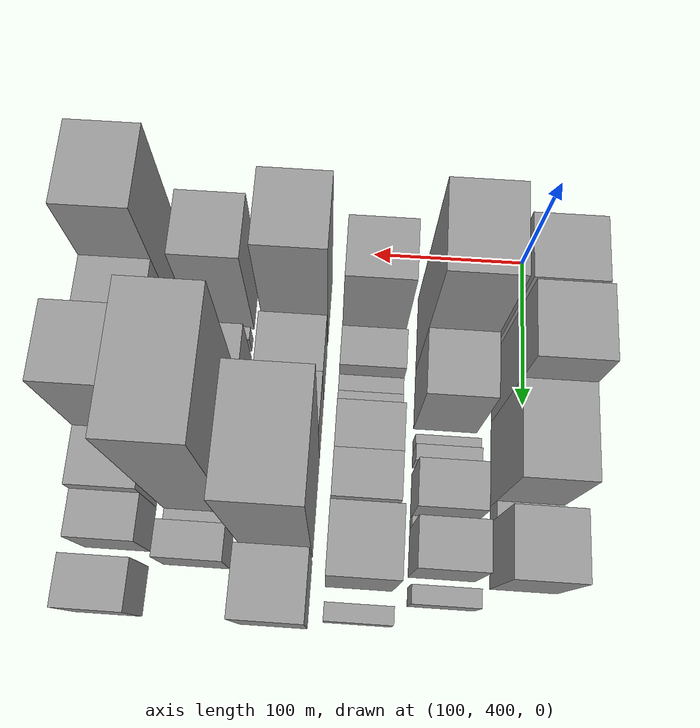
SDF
<sdf version="1.6">
 <world name="default">
  <model name="building_39">
   <static>1</static>
   <pose>100.0000 448.2193 0 0.000000 0.000000 0.000000</pose>
   <link name="link">
    <pose>0 0 58.50 0 0 0</pose>
    <collision name="collision"><geometry><box><size>40.0000 37.8522 117.0000</size></box></geometry></collision>
    <visual name="visual">
     <cast_shadows>0</cast_shadows>
     <geometry><box><size>40.0000 37.8522 117.0000</size></box></geometry>
     <material>
      <script>
       <uri>model://grey_wall/materials/scripts</uri>
       <uri>model://grey_wall/materials/textures</uri>
       <name>vrc/grey_wall</name>
      </script>
     </material>
    </visual>
   </link>
  </model>
  <model name="building_40">
   <static>1</static>
   <pose>100.0000 492.0342 0 0.000000 0.000000 0.000000</pose>
   <link name="link">
    <pose>0 0 61.50 0 0 0</pose>
    <collision name="collision"><geometry><box><size>40.0000 41.7775 123.0000</size></box></geometry></collision>
    <visual name="visual">
     <cast_shadows>0</cast_shadows>
     <geometry><box><size>40.0000 41.7775 123.0000</size></box></geometry>
     <material>
      <script>
       <uri>model://grey_wall/materials/scripts</uri>
       <uri>model://grey_wall/materials/textures</uri>
       <name>vrc/grey_wall</name>
      </script>
     </material>
    </visual>
   </link>
  </model>
  <model name="building_41">
   <static>1</static>
   <pose>100.0000 539.8576 0 0.000000 0.000000 0.000000</pose>
   <link name="link">
    <pose>0 0 45.00 0 0 0</pose>
    <collision name="collision"><geometry><box><size>40.0000 53.8695 90.0000</size></box></geometry></collision>
    <visual name="visual">
     <cast_shadows>0</cast_shadows>
     <geometry><box><size>40.0000 53.8695 90.0000</size></box></geometry>
     <material>
      <script>
       <uri>model://grey_wall/materials/scripts</uri>
       <uri>model://grey_wall/materials/textures</uri>
       <name>vrc/grey_wall</name>
      </script>
     </material>
    </visual>
   </link>
  </model>
  <model name="building_42">
   <static>1</static>
   <pose>100.0000 571.8155 0 0.000000 0.000000 0.000000</pose>
   <link name="link">
    <pose>0 0 10.50 0 0 0</pose>
    <collision name="collision"><geometry><box><size>40.0000 10.0463 21.0000</size></box></geometry></collision>
    <visual name="visual">
     <cast_shadows>0</cast_shadows>
     <geometry><box><size>40.0000 10.0463 21.0000</size></box></geometry>
     <material>
      <script>
       <uri>model://grey_wall/materials/scripts</uri>
       <uri>model://grey_wall/materials/textures</uri>
       <name>vrc/grey_wall</name>
      </script>
     </material>
    </visual>
   </link>
  </model>
  <model name="building_43">
   <static>1</static>
   <pose>100.0000 596.6419 0 0.000000 0.000000 0.000000</pose>
   <link name="link">
    <pose>0 0 34.50 0 0 0</pose>
    <collision name="collision"><geometry><box><size>40.0000 39.6066 69.0000</size></box></geometry></collision>
    <visual name="visual">
     <cast_shadows>0</cast_shadows>
     <geometry><box><size>40.0000 39.6066 69.0000</size></box></geometry>
     <material>
      <script>
       <uri>model://grey_wall/materials/scripts</uri>
       <uri>model://grey_wall/materials/textures</uri>
       <name>vrc/grey_wall</name>
      </script>
     </material>
    </visual>
   </link>
  </model>
  <model name="building_83">
   <static>1</static>
   <pose>149.0000 455.8976 0 0.000000 0.000000 0.000000</pose>
   <link name="link">
    <pose>0 0 73.50 0 0 0</pose>
    <collision name="collision"><geometry><box><size>40.0000 51.5183 147.0000</size></box></geometry></collision>
    <visual name="visual">
     <cast_shadows>0</cast_shadows>
     <geometry><box><size>40.0000 51.5183 147.0000</size></box></geometry>
     <material>
      <script>
       <uri>model://grey_wall/materials/scripts</uri>
       <uri>model://grey_wall/materials/textures</uri>
       <name>vrc/grey_wall</name>
      </script>
     </material>
    </visual>
   </link>
  </model>
  <model name="building_84">
   <static>1</static>
   <pose>149.0000 501.0467 0 0.000000 0.000000 0.000000</pose>
   <link name="link">
    <pose>0 0 37.50 0 0 0</pose>
    <collision name="collision"><geometry><box><size>40.0000 38.7800 75.0000</size></box></geometry></collision>
    <visual name="visual">
     <cast_shadows>0</cast_shadows>
     <geometry><box><size>40.0000 38.7800 75.0000</size></box></geometry>
     <material>
      <script>
       <uri>model://grey_wall/materials/scripts</uri>
       <uri>model://grey_wall/materials/textures</uri>
       <name>vrc/grey_wall</name>
      </script>
     </material>
    </visual>
   </link>
  </model>
  <model name="building_85">
   <static>1</static>
   <pose>149.0000 532.1612 0 0.000000 0.000000 0.000000</pose>
   <link name="link">
    <pose>0 0 9.00 0 0 0</pose>
    <collision name="collision"><geometry><box><size>40.0000 7.4489 18.0000</size></box></geometry></collision>
    <visual name="visual">
     <cast_shadows>0</cast_shadows>
     <geometry><box><size>40.0000 7.4489 18.0000</size></box></geometry>
     <material>
      <script>
       <uri>model://grey_wall/materials/scripts</uri>
       <uri>model://grey_wall/materials/textures</uri>
       <name>vrc/grey_wall</name>
      </script>
     </material>
    </visual>
   </link>
  </model>
  <model name="building_86">
   <static>1</static>
   <pose>149.0000 540.8552 0 0.000000 0.000000 0.000000</pose>
   <link name="link">
    <pose>0 0 12.00 0 0 0</pose>
    <collision name="collision"><geometry><box><size>40.0000 9.9391 24.0000</size></box></geometry></collision>
    <visual name="visual">
     <cast_shadows>0</cast_shadows>
     <geometry><box><size>40.0000 9.9391 24.0000</size></box></geometry>
     <material>
      <script>
       <uri>model://grey_wall/materials/scripts</uri>
       <uri>model://grey_wall/materials/textures</uri>
       <name>vrc/grey_wall</name>
      </script>
     </material>
    </visual>
   </link>
  </model>
  <model name="building_87">
   <static>1</static>
   <pose>149.0000 563.7792 0 0.000000 0.000000 0.000000</pose>
   <link name="link">
    <pose>0 0 24.00 0 0 0</pose>
    <collision name="collision"><geometry><box><size>40.0000 27.9090 48.0000</size></box></geometry></collision>
    <visual name="visual">
     <cast_shadows>0</cast_shadows>
     <geometry><box><size>40.0000 27.9090 48.0000</size></box></geometry>
     <material>
      <script>
       <uri>model://grey_wall/materials/scripts</uri>
       <uri>model://grey_wall/materials/textures</uri>
       <name>vrc/grey_wall</name>
      </script>
     </material>
    </visual>
   </link>
  </model>
  <model name="building_88">
   <static>1</static>
   <pose>149.0000 580.9010 0 0.000000 0.000000 0.000000</pose>
   <link name="link">
    <pose>0 0 7.50 0 0 0</pose>
    <collision name="collision"><geometry><box><size>40.0000 6.3346 15.0000</size></box></geometry></collision>
    <visual name="visual">
     <cast_shadows>0</cast_shadows>
     <geometry><box><size>40.0000 6.3346 15.0000</size></box></geometry>
     <material>
      <script>
       <uri>model://grey_wall/materials/scripts</uri>
       <uri>model://grey_wall/materials/textures</uri>
       <name>vrc/grey_wall</name>
      </script>
     </material>
    </visual>
   </link>
  </model>
  <model name="building_89">
   <static>1</static>
   <pose>149.0000 598.3968 0 0.000000 0.000000 0.000000</pose>
   <link name="link">
    <pose>0 0 28.50 0 0 0</pose>
    <collision name="collision"><geometry><box><size>40.0000 28.6569 57.0000</size></box></geometry></collision>
    <visual name="visual">
     <cast_shadows>0</cast_shadows>
     <geometry><box><size>40.0000 28.6569 57.0000</size></box></geometry>
     <material>
      <script>
       <uri>model://grey_wall/materials/scripts</uri>
       <uri>model://grey_wall/materials/textures</uri>
       <name>vrc/grey_wall</name>
      </script>
     </material>
    </visual>
   </link>
  </model>
  <model name="building_90">
   <static>1</static>
   <pose>149.0000 624.2394 0 0.000000 0.000000 0.000000</pose>
   <link name="link">
    <pose>0 0 13.50 0 0 0</pose>
    <collision name="collision"><geometry><box><size>40.0000 11.0282 27.0000</size></box></geometry></collision>
    <visual name="visual">
     <cast_shadows>0</cast_shadows>
     <geometry><box><size>40.0000 11.0282 27.0000</size></box></geometry>
     <material>
      <script>
       <uri>model://grey_wall/materials/scripts</uri>
       <uri>model://grey_wall/materials/textures</uri>
       <name>vrc/grey_wall</name>
      </script>
     </material>
    </visual>
   </link>
  </model>
  <model name="building_132">
   <static>1</static>
   <pose>198.0000 444.2266 0 0.000000 0.000000 0.000000</pose>
   <link name="link">
    <pose>0 0 48.00 0 0 0</pose>
    <collision name="collision"><geometry><box><size>40.0000 37.5513 96.0000</size></box></geometry></collision>
    <visual name="visual">
     <cast_shadows>0</cast_shadows>
     <geometry><box><size>40.0000 37.5513 96.0000</size></box></geometry>
     <material>
      <script>
       <uri>model://grey_wall/materials/scripts</uri>
       <uri>model://grey_wall/materials/textures</uri>
       <name>vrc/grey_wall</name>
      </script>
     </material>
    </visual>
   </link>
  </model>
  <model name="building_133">
   <static>1</static>
   <pose>198.0000 482.5629 0 0.000000 0.000000 0.000000</pose>
   <link name="link">
    <pose>0 0 21.00 0 0 0</pose>
    <collision name="collision"><geometry><box><size>40.0000 25.1211 42.0000</size></box></geometry></collision>
    <visual name="visual">
     <cast_shadows>0</cast_shadows>
     <geometry><box><size>40.0000 25.1211 42.0000</size></box></geometry>
     <material>
      <script>
       <uri>model://grey_wall/materials/scripts</uri>
       <uri>model://grey_wall/materials/textures</uri>
       <name>vrc/grey_wall</name>
      </script>
     </material>
    </visual>
   </link>
  </model>
  <model name="building_134">
   <static>1</static>
   <pose>198.0000 500.7933 0 0.000000 0.000000 0.000000</pose>
   <link name="link">
    <pose>0 0 12.00 0 0 0</pose>
    <collision name="collision"><geometry><box><size>40.0000 11.3396 24.0000</size></box></geometry></collision>
    <visual name="visual">
     <cast_shadows>0</cast_shadows>
     <geometry><box><size>40.0000 11.3396 24.0000</size></box></geometry>
     <material>
      <script>
       <uri>model://grey_wall/materials/scripts</uri>
       <uri>model://grey_wall/materials/textures</uri>
       <name>vrc/grey_wall</name>
      </script>
     </material>
    </visual>
   </link>
  </model>
  <model name="building_135">
   <static>1</static>
   <pose>198.0000 512.7919 0 0.000000 0.000000 0.000000</pose>
   <link name="link">
    <pose>0 0 13.50 0 0 0</pose>
    <collision name="collision"><geometry><box><size>40.0000 12.6577 27.0000</size></box></geometry></collision>
    <visual name="visual">
     <cast_shadows>0</cast_shadows>
     <geometry><box><size>40.0000 12.6577 27.0000</size></box></geometry>
     <material>
      <script>
       <uri>model://grey_wall/materials/scripts</uri>
       <uri>model://grey_wall/materials/textures</uri>
       <name>vrc/grey_wall</name>
      </script>
     </material>
    </visual>
   </link>
  </model>
  <model name="building_136">
   <static>1</static>
   <pose>198.0000 533.3489 0 0.000000 0.000000 0.000000</pose>
   <link name="link">
    <pose>0 0 25.50 0 0 0</pose>
    <collision name="collision"><geometry><box><size>40.0000 28.4563 51.0000</size></box></geometry></collision>
    <visual name="visual">
     <cast_shadows>0</cast_shadows>
     <geometry><box><size>40.0000 28.4563 51.0000</size></box></geometry>
     <material>
      <script>
       <uri>model://grey_wall/materials/scripts</uri>
       <uri>model://grey_wall/materials/textures</uri>
       <name>vrc/grey_wall</name>
      </script>
     </material>
    </visual>
   </link>
  </model>
  <model name="building_137">
   <static>1</static>
   <pose>198.0000 561.6796 0 0.000000 0.000000 0.000000</pose>
   <link name="link">
    <pose>0 0 25.50 0 0 0</pose>
    <collision name="collision"><geometry><box><size>40.0000 28.2052 51.0000</size></box></geometry></collision>
    <visual name="visual">
     <cast_shadows>0</cast_shadows>
     <geometry><box><size>40.0000 28.2052 51.0000</size></box></geometry>
     <material>
      <script>
       <uri>model://grey_wall/materials/scripts</uri>
       <uri>model://grey_wall/materials/textures</uri>
       <name>vrc/grey_wall</name>
      </script>
     </material>
    </visual>
   </link>
  </model>
  <model name="building_138">
   <static>1</static>
   <pose>198.0000 601.6888 0 0.000000 0.000000 0.000000</pose>
   <link name="link">
    <pose>0 0 37.50 0 0 0</pose>
    <collision name="collision"><geometry><box><size>40.0000 39.8132 75.0000</size></box></geometry></collision>
    <visual name="visual">
     <cast_shadows>0</cast_shadows>
     <geometry><box><size>40.0000 39.8132 75.0000</size></box></geometry>
     <material>
      <script>
       <uri>model://grey_wall/materials/scripts</uri>
       <uri>model://grey_wall/materials/textures</uri>
       <name>vrc/grey_wall</name>
      </script>
     </material>
    </visual>
   </link>
  </model>
  <model name="building_139">
   <static>1</static>
   <pose>198.0000 636.9009 0 0.000000 0.000000 0.000000</pose>
   <link name="link">
    <pose>0 0 12.00 0 0 0</pose>
    <collision name="collision"><geometry><box><size>40.0000 10.6111 24.0000</size></box></geometry></collision>
    <visual name="visual">
     <cast_shadows>0</cast_shadows>
     <geometry><box><size>40.0000 10.6111 24.0000</size></box></geometry>
     <material>
      <script>
       <uri>model://grey_wall/materials/scripts</uri>
       <uri>model://grey_wall/materials/textures</uri>
       <name>vrc/grey_wall</name>
      </script>
     </material>
    </visual>
   </link>
  </model>
  <model name="building_184">
   <static>1</static>
   <pose>247.0000 445.5839 0 0.000000 0.000000 0.000000</pose>
   <link name="link">
    <pose>0 0 67.50 0 0 0</pose>
    <collision name="collision"><geometry><box><size>40.0000 44.8889 135.0000</size></box></geometry></collision>
    <visual name="visual">
     <cast_shadows>0</cast_shadows>
     <geometry><box><size>40.0000 44.8889 135.0000</size></box></geometry>
     <material>
      <script>
       <uri>model://grey_wall/materials/scripts</uri>
       <uri>model://grey_wall/materials/textures</uri>
       <name>vrc/grey_wall</name>
      </script>
     </material>
    </visual>
   </link>
  </model>
  <model name="building_185">
   <static>1</static>
   <pose>247.0000 490.8082 0 0.000000 0.000000 0.000000</pose>
   <link name="link">
    <pose>0 0 31.50 0 0 0</pose>
    <collision name="collision"><geometry><box><size>40.0000 35.5597 63.0000</size></box></geometry></collision>
    <visual name="visual">
     <cast_shadows>0</cast_shadows>
     <geometry><box><size>40.0000 35.5597 63.0000</size></box></geometry>
     <material>
      <script>
       <uri>model://grey_wall/materials/scripts</uri>
       <uri>model://grey_wall/materials/textures</uri>
       <name>vrc/grey_wall</name>
      </script>
     </material>
    </visual>
   </link>
  </model>
  <model name="building_186">
   <static>1</static>
   <pose>247.0000 526.6676 0 0.000000 0.000000 0.000000</pose>
   <link name="link">
    <pose>0 0 33.00 0 0 0</pose>
    <collision name="collision"><geometry><box><size>40.0000 36.1590 66.0000</size></box></geometry></collision>
    <visual name="visual">
     <cast_shadows>0</cast_shadows>
     <geometry><box><size>40.0000 36.1590 66.0000</size></box></geometry>
     <material>
      <script>
       <uri>model://grey_wall/materials/scripts</uri>
       <uri>model://grey_wall/materials/textures</uri>
       <name>vrc/grey_wall</name>
      </script>
     </material>
    </visual>
   </link>
  </model>
  <model name="building_187">
   <static>1</static>
   <pose>247.0000 574.7906 0 0.000000 0.000000 0.000000</pose>
   <link name="link">
    <pose>0 0 90.00 0 0 0</pose>
    <collision name="collision"><geometry><box><size>40.0000 60.0870 180.0000</size></box></geometry></collision>
    <visual name="visual">
     <cast_shadows>0</cast_shadows>
     <geometry><box><size>40.0000 60.0870 180.0000</size></box></geometry>
     <material>
      <script>
       <uri>model://grey_wall/materials/scripts</uri>
       <uri>model://grey_wall/materials/textures</uri>
       <name>vrc/grey_wall</name>
      </script>
     </material>
    </visual>
   </link>
  </model>
  <model name="building_188">
   <static>1</static>
   <pose>247.0000 627.1819 0 0.000000 0.000000 0.000000</pose>
   <link name="link">
    <pose>0 0 37.50 0 0 0</pose>
    <collision name="collision"><geometry><box><size>40.0000 38.6957 75.0000</size></box></geometry></collision>
    <visual name="visual">
     <cast_shadows>0</cast_shadows>
     <geometry><box><size>40.0000 38.6957 75.0000</size></box></geometry>
     <material>
      <script>
       <uri>model://grey_wall/materials/scripts</uri>
       <uri>model://grey_wall/materials/textures</uri>
       <name>vrc/grey_wall</name>
      </script>
     </material>
    </visual>
   </link>
  </model>
  <model name="building_233">
   <static>1</static>
   <pose>296.0000 439.6206 0 0.000000 0.000000 0.000000</pose>
   <link name="link">
    <pose>0 0 51.00 0 0 0</pose>
    <collision name="collision"><geometry><box><size>40.0000 39.9830 102.0000</size></box></geometry></collision>
    <visual name="visual">
     <cast_shadows>0</cast_shadows>
     <geometry><box><size>40.0000 39.9830 102.0000</size></box></geometry>
     <material>
      <script>
       <uri>model://grey_wall/materials/scripts</uri>
       <uri>model://grey_wall/materials/textures</uri>
       <name>vrc/grey_wall</name>
      </script>
     </material>
    </visual>
   </link>
  </model>
  <model name="building_234">
   <static>1</static>
   <pose>296.0000 470.9556 0 0.000000 0.000000 0.000000</pose>
   <link name="link">
    <pose>0 0 10.50 0 0 0</pose>
    <collision name="collision"><geometry><box><size>40.0000 8.6869 21.0000</size></box></geometry></collision>
    <visual name="visual">
     <cast_shadows>0</cast_shadows>
     <geometry><box><size>40.0000 8.6869 21.0000</size></box></geometry>
     <material>
      <script>
       <uri>model://grey_wall/materials/scripts</uri>
       <uri>model://grey_wall/materials/textures</uri>
       <name>vrc/grey_wall</name>
      </script>
     </material>
    </visual>
   </link>
  </model>
  <model name="building_235">
   <static>1</static>
   <pose>296.0000 495.9444 0 0.000000 0.000000 0.000000</pose>
   <link name="link">
    <pose>0 0 28.50 0 0 0</pose>
    <collision name="collision"><geometry><box><size>40.0000 33.2908 57.0000</size></box></geometry></collision>
    <visual name="visual">
     <cast_shadows>0</cast_shadows>
     <geometry><box><size>40.0000 33.2908 57.0000</size></box></geometry>
     <material>
      <script>
       <uri>model://grey_wall/materials/scripts</uri>
       <uri>model://grey_wall/materials/textures</uri>
       <name>vrc/grey_wall</name>
      </script>
     </material>
    </visual>
   </link>
  </model>
  <model name="building_236">
   <static>1</static>
   <pose>296.0000 548.5043 0 0.000000 0.000000 0.000000</pose>
   <link name="link">
    <pose>0 0 93.00 0 0 0</pose>
    <collision name="collision"><geometry><box><size>40.0000 71.8288 186.0000</size></box></geometry></collision>
    <visual name="visual">
     <cast_shadows>0</cast_shadows>
     <geometry><box><size>40.0000 71.8288 186.0000</size></box></geometry>
     <material>
      <script>
       <uri>model://grey_wall/materials/scripts</uri>
       <uri>model://grey_wall/materials/textures</uri>
       <name>vrc/grey_wall</name>
      </script>
     </material>
    </visual>
   </link>
  </model>
  <model name="building_237">
   <static>1</static>
   <pose>296.0000 589.1149 0 0.000000 0.000000 0.000000</pose>
   <link name="link">
    <pose>0 0 10.50 0 0 0</pose>
    <collision name="collision"><geometry><box><size>40.0000 9.3925 21.0000</size></box></geometry></collision>
    <visual name="visual">
     <cast_shadows>0</cast_shadows>
     <geometry><box><size>40.0000 9.3925 21.0000</size></box></geometry>
     <material>
      <script>
       <uri>model://grey_wall/materials/scripts</uri>
       <uri>model://grey_wall/materials/textures</uri>
       <name>vrc/grey_wall</name>
      </script>
     </material>
    </visual>
   </link>
  </model>
  <model name="building_238">
   <static>1</static>
   <pose>296.0000 604.4211 0 0.000000 0.000000 0.000000</pose>
   <link name="link">
    <pose>0 0 21.00 0 0 0</pose>
    <collision name="collision"><geometry><box><size>40.0000 21.2197 42.0000</size></box></geometry></collision>
    <visual name="visual">
     <cast_shadows>0</cast_shadows>
     <geometry><box><size>40.0000 21.2197 42.0000</size></box></geometry>
     <material>
      <script>
       <uri>model://grey_wall/materials/scripts</uri>
       <uri>model://grey_wall/materials/textures</uri>
       <name>vrc/grey_wall</name>
      </script>
     </material>
    </visual>
   </link>
  </model>
  <model name="building_285">
   <static>1</static>
   <pose>345.0000 436.0543 0 0.000000 0.000000 0.000000</pose>
   <link name="link">
    <pose>0 0 75.00 0 0 0</pose>
    <collision name="collision"><geometry><box><size>40.0000 48.5235 150.0000</size></box></geometry></collision>
    <visual name="visual">
     <cast_shadows>0</cast_shadows>
     <geometry><box><size>40.0000 48.5235 150.0000</size></box></geometry>
     <material>
      <script>
       <uri>model://grey_wall/materials/scripts</uri>
       <uri>model://grey_wall/materials/textures</uri>
       <name>vrc/grey_wall</name>
      </script>
     </material>
    </visual>
   </link>
  </model>
  <model name="building_286">
   <static>1</static>
   <pose>345.0000 478.8372 0 0.000000 0.000000 0.000000</pose>
   <link name="link">
    <pose>0 0 48.00 0 0 0</pose>
    <collision name="collision"><geometry><box><size>40.0000 37.0424 96.0000</size></box></geometry></collision>
    <visual name="visual">
     <cast_shadows>0</cast_shadows>
     <geometry><box><size>40.0000 37.0424 96.0000</size></box></geometry>
     <material>
      <script>
       <uri>model://grey_wall/materials/scripts</uri>
       <uri>model://grey_wall/materials/textures</uri>
       <name>vrc/grey_wall</name>
      </script>
     </material>
    </visual>
   </link>
  </model>
  <model name="building_287">
   <static>1</static>
   <pose>345.0000 526.4013 0 0.000000 0.000000 0.000000</pose>
   <link name="link">
    <pose>0 0 69.00 0 0 0</pose>
    <collision name="collision"><geometry><box><size>40.0000 42.0858 138.0000</size></box></geometry></collision>
    <visual name="visual">
     <cast_shadows>0</cast_shadows>
     <geometry><box><size>40.0000 42.0858 138.0000</size></box></geometry>
     <material>
      <script>
       <uri>model://grey_wall/materials/scripts</uri>
       <uri>model://grey_wall/materials/textures</uri>
       <name>vrc/grey_wall</name>
      </script>
     </material>
    </visual>
   </link>
  </model>
  <model name="building_288">
   <static>1</static>
   <pose>345.0000 564.2228 0 0.000000 0.000000 0.000000</pose>
   <link name="link">
    <pose>0 0 30.00 0 0 0</pose>
    <collision name="collision"><geometry><box><size>40.0000 33.5573 60.0000</size></box></geometry></collision>
    <visual name="visual">
     <cast_shadows>0</cast_shadows>
     <geometry><box><size>40.0000 33.5573 60.0000</size></box></geometry>
     <material>
      <script>
       <uri>model://grey_wall/materials/scripts</uri>
       <uri>model://grey_wall/materials/textures</uri>
       <name>vrc/grey_wall</name>
      </script>
     </material>
    </visual>
   </link>
  </model>
  <model name="building_289">
   <static>1</static>
   <pose>345.0000 594.4846 0 0.000000 0.000000 0.000000</pose>
   <link name="link">
    <pose>0 0 24.00 0 0 0</pose>
    <collision name="collision"><geometry><box><size>40.0000 26.9663 48.0000</size></box></geometry></collision>
    <visual name="visual">
     <cast_shadows>0</cast_shadows>
     <geometry><box><size>40.0000 26.9663 48.0000</size></box></geometry>
     <material>
      <script>
       <uri>model://grey_wall/materials/scripts</uri>
       <uri>model://grey_wall/materials/textures</uri>
       <name>vrc/grey_wall</name>
      </script>
     </material>
    </visual>
   </link>
  </model>
  <model name="building_290">
   <static>1</static>
   <pose>345.0000 631.4927 0 0.000000 0.000000 0.000000</pose>
   <link name="link">
    <pose>0 0 25.50 0 0 0</pose>
    <collision name="collision"><geometry><box><size>40.0000 29.0499 51.0000</size></box></geometry></collision>
    <visual name="visual">
     <cast_shadows>0</cast_shadows>
     <geometry><box><size>40.0000 29.0499 51.0000</size></box></geometry>
     <material>
      <script>
       <uri>model://grey_wall/materials/scripts</uri>
       <uri>model://grey_wall/materials/textures</uri>
       <name>vrc/grey_wall</name>
      </script>
     </material>
    </visual>
   </link>
  </model>
 </world>
</sdf>
